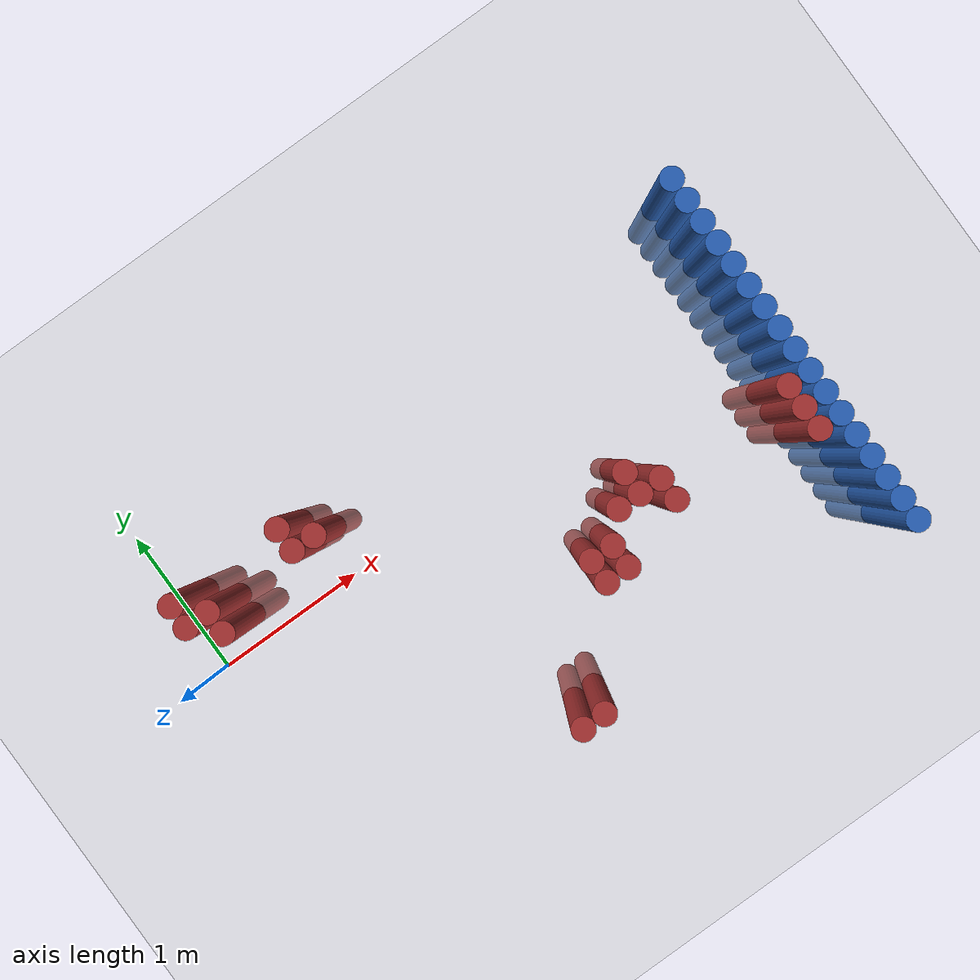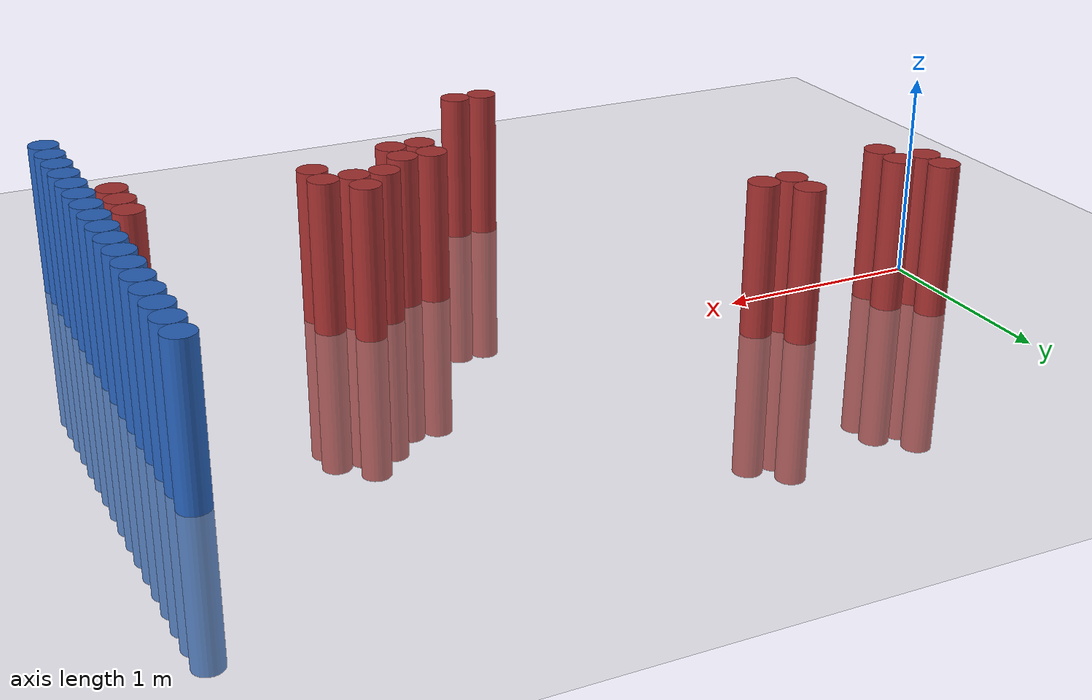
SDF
<sdf version="1.6">
 <world name="default">
  <model name="ground_plane">
   <static>1</static>
   <link name="link">
    <collision name="collision">
     <geometry><plane><normal>0 0 1</normal><size>100 100</size></plane></geometry>
     <surface><friction><ode><mu>100</mu><mu2>50</mu2></ode></friction></surface>
    </collision>
    <visual name="visual">
     <cast_shadows>0</cast_shadows>
     <geometry><plane><normal>0 0 1</normal><size>100 100</size></plane></geometry>
     <material>
      <script><uri>file://media/materials/scripts/gazebo.material</uri><name>Gazebo/Grey</name></script>
     </material>
    </visual>
   </link>
  </model>
  <model name="unit_cylinder_94">
   <static>1</static>
   <pose>3.925000 -1.475000 0.000000 0.000000 0.000000 0.000000</pose>
   <link name="link">
    <inertial>
     <mass>1</mass>
     <inertia><ixx>0.145833</ixx><ixy>0</ixy><ixz>0</ixz><iyy>0.145833</iyy><iyz>0</iyz><izz>0.125</izz></inertia>
    </inertial>
    <collision name="collision">
     <geometry><cylinder><radius>0.075000</radius><length>1.5</length></cylinder></geometry>
    </collision>
    <visual name="visual">
     <geometry><cylinder><radius>0.075000</radius><length>1.5</length></cylinder></geometry>
     <material>
      <ambient>0.152000 0.379000 0.720000 1</ambient>
      <diffuse>0.152000 0.379000 0.720000 1</diffuse>
     </material>
     <material>
      <script><name>Gazebo/Grey</name><uri>file://media/materials/scripts/gazebo.material</uri></script>
     </material>
    </visual>
   </link>
  </model>
  <model name="unit_cylinder_96">
   <static>1</static>
   <pose>3.925000 -1.325000 0.000000 0.000000 0.000000 0.000000</pose>
   <link name="link">
    <inertial>
     <mass>1</mass>
     <inertia><ixx>0.145833</ixx><ixy>0</ixy><ixz>0</ixz><iyy>0.145833</iyy><iyz>0</iyz><izz>0.125</izz></inertia>
    </inertial>
    <collision name="collision">
     <geometry><cylinder><radius>0.075000</radius><length>1.5</length></cylinder></geometry>
    </collision>
    <visual name="visual">
     <geometry><cylinder><radius>0.075000</radius><length>1.5</length></cylinder></geometry>
     <material>
      <ambient>0.152000 0.379000 0.720000 1</ambient>
      <diffuse>0.152000 0.379000 0.720000 1</diffuse>
     </material>
     <material>
      <script><name>Gazebo/Grey</name><uri>file://media/materials/scripts/gazebo.material</uri></script>
     </material>
    </visual>
   </link>
  </model>
  <model name="unit_cylinder_98">
   <static>1</static>
   <pose>3.925000 -1.175000 0.000000 0.000000 0.000000 0.000000</pose>
   <link name="link">
    <inertial>
     <mass>1</mass>
     <inertia><ixx>0.145833</ixx><ixy>0</ixy><ixz>0</ixz><iyy>0.145833</iyy><iyz>0</iyz><izz>0.125</izz></inertia>
    </inertial>
    <collision name="collision">
     <geometry><cylinder><radius>0.075000</radius><length>1.5</length></cylinder></geometry>
    </collision>
    <visual name="visual">
     <geometry><cylinder><radius>0.075000</radius><length>1.5</length></cylinder></geometry>
     <material>
      <ambient>0.152000 0.379000 0.720000 1</ambient>
      <diffuse>0.152000 0.379000 0.720000 1</diffuse>
     </material>
     <material>
      <script><name>Gazebo/Grey</name><uri>file://media/materials/scripts/gazebo.material</uri></script>
     </material>
    </visual>
   </link>
  </model>
  <model name="unit_cylinder_100">
   <static>1</static>
   <pose>3.925000 -1.025000 0.000000 0.000000 0.000000 0.000000</pose>
   <link name="link">
    <inertial>
     <mass>1</mass>
     <inertia><ixx>0.145833</ixx><ixy>0</ixy><ixz>0</ixz><iyy>0.145833</iyy><iyz>0</iyz><izz>0.125</izz></inertia>
    </inertial>
    <collision name="collision">
     <geometry><cylinder><radius>0.075000</radius><length>1.5</length></cylinder></geometry>
    </collision>
    <visual name="visual">
     <geometry><cylinder><radius>0.075000</radius><length>1.5</length></cylinder></geometry>
     <material>
      <ambient>0.152000 0.379000 0.720000 1</ambient>
      <diffuse>0.152000 0.379000 0.720000 1</diffuse>
     </material>
     <material>
      <script><name>Gazebo/Grey</name><uri>file://media/materials/scripts/gazebo.material</uri></script>
     </material>
    </visual>
   </link>
  </model>
  <model name="unit_cylinder_102">
   <static>1</static>
   <pose>3.925000 -0.875000 0.000000 0.000000 0.000000 0.000000</pose>
   <link name="link">
    <inertial>
     <mass>1</mass>
     <inertia><ixx>0.145833</ixx><ixy>0</ixy><ixz>0</ixz><iyy>0.145833</iyy><iyz>0</iyz><izz>0.125</izz></inertia>
    </inertial>
    <collision name="collision">
     <geometry><cylinder><radius>0.075000</radius><length>1.5</length></cylinder></geometry>
    </collision>
    <visual name="visual">
     <geometry><cylinder><radius>0.075000</radius><length>1.5</length></cylinder></geometry>
     <material>
      <ambient>0.152000 0.379000 0.720000 1</ambient>
      <diffuse>0.152000 0.379000 0.720000 1</diffuse>
     </material>
     <material>
      <script><name>Gazebo/Grey</name><uri>file://media/materials/scripts/gazebo.material</uri></script>
     </material>
    </visual>
   </link>
  </model>
  <model name="unit_cylinder_104">
   <static>1</static>
   <pose>3.925000 -0.725000 0.000000 0.000000 0.000000 0.000000</pose>
   <link name="link">
    <inertial>
     <mass>1</mass>
     <inertia><ixx>0.145833</ixx><ixy>0</ixy><ixz>0</ixz><iyy>0.145833</iyy><iyz>0</iyz><izz>0.125</izz></inertia>
    </inertial>
    <collision name="collision">
     <geometry><cylinder><radius>0.075000</radius><length>1.5</length></cylinder></geometry>
    </collision>
    <visual name="visual">
     <geometry><cylinder><radius>0.075000</radius><length>1.5</length></cylinder></geometry>
     <material>
      <ambient>0.152000 0.379000 0.720000 1</ambient>
      <diffuse>0.152000 0.379000 0.720000 1</diffuse>
     </material>
     <material>
      <script><name>Gazebo/Grey</name><uri>file://media/materials/scripts/gazebo.material</uri></script>
     </material>
    </visual>
   </link>
  </model>
  <model name="unit_cylinder_106">
   <static>1</static>
   <pose>3.925000 -0.575000 0.000000 0.000000 0.000000 0.000000</pose>
   <link name="link">
    <inertial>
     <mass>1</mass>
     <inertia><ixx>0.145833</ixx><ixy>0</ixy><ixz>0</ixz><iyy>0.145833</iyy><iyz>0</iyz><izz>0.125</izz></inertia>
    </inertial>
    <collision name="collision">
     <geometry><cylinder><radius>0.075000</radius><length>1.5</length></cylinder></geometry>
    </collision>
    <visual name="visual">
     <geometry><cylinder><radius>0.075000</radius><length>1.5</length></cylinder></geometry>
     <material>
      <ambient>0.152000 0.379000 0.720000 1</ambient>
      <diffuse>0.152000 0.379000 0.720000 1</diffuse>
     </material>
     <material>
      <script><name>Gazebo/Grey</name><uri>file://media/materials/scripts/gazebo.material</uri></script>
     </material>
    </visual>
   </link>
  </model>
  <model name="unit_cylinder_108">
   <static>1</static>
   <pose>3.925000 -0.425000 0.000000 0.000000 0.000000 0.000000</pose>
   <link name="link">
    <inertial>
     <mass>1</mass>
     <inertia><ixx>0.145833</ixx><ixy>0</ixy><ixz>0</ixz><iyy>0.145833</iyy><iyz>0</iyz><izz>0.125</izz></inertia>
    </inertial>
    <collision name="collision">
     <geometry><cylinder><radius>0.075000</radius><length>1.5</length></cylinder></geometry>
    </collision>
    <visual name="visual">
     <geometry><cylinder><radius>0.075000</radius><length>1.5</length></cylinder></geometry>
     <material>
      <ambient>0.152000 0.379000 0.720000 1</ambient>
      <diffuse>0.152000 0.379000 0.720000 1</diffuse>
     </material>
     <material>
      <script><name>Gazebo/Grey</name><uri>file://media/materials/scripts/gazebo.material</uri></script>
     </material>
    </visual>
   </link>
  </model>
  <model name="unit_cylinder_110">
   <static>1</static>
   <pose>3.925000 -0.275000 0.000000 0.000000 0.000000 0.000000</pose>
   <link name="link">
    <inertial>
     <mass>1</mass>
     <inertia><ixx>0.145833</ixx><ixy>0</ixy><ixz>0</ixz><iyy>0.145833</iyy><iyz>0</iyz><izz>0.125</izz></inertia>
    </inertial>
    <collision name="collision">
     <geometry><cylinder><radius>0.075000</radius><length>1.5</length></cylinder></geometry>
    </collision>
    <visual name="visual">
     <geometry><cylinder><radius>0.075000</radius><length>1.5</length></cylinder></geometry>
     <material>
      <ambient>0.152000 0.379000 0.720000 1</ambient>
      <diffuse>0.152000 0.379000 0.720000 1</diffuse>
     </material>
     <material>
      <script><name>Gazebo/Grey</name><uri>file://media/materials/scripts/gazebo.material</uri></script>
     </material>
    </visual>
   </link>
  </model>
  <model name="unit_cylinder_112">
   <static>1</static>
   <pose>3.925000 -0.125000 0.000000 0.000000 0.000000 0.000000</pose>
   <link name="link">
    <inertial>
     <mass>1</mass>
     <inertia><ixx>0.145833</ixx><ixy>0</ixy><ixz>0</ixz><iyy>0.145833</iyy><iyz>0</iyz><izz>0.125</izz></inertia>
    </inertial>
    <collision name="collision">
     <geometry><cylinder><radius>0.075000</radius><length>1.5</length></cylinder></geometry>
    </collision>
    <visual name="visual">
     <geometry><cylinder><radius>0.075000</radius><length>1.5</length></cylinder></geometry>
     <material>
      <ambient>0.152000 0.379000 0.720000 1</ambient>
      <diffuse>0.152000 0.379000 0.720000 1</diffuse>
     </material>
     <material>
      <script><name>Gazebo/Grey</name><uri>file://media/materials/scripts/gazebo.material</uri></script>
     </material>
    </visual>
   </link>
  </model>
  <model name="unit_cylinder_114">
   <static>1</static>
   <pose>3.925000 0.025000 0.000000 0.000000 0.000000 0.000000</pose>
   <link name="link">
    <inertial>
     <mass>1</mass>
     <inertia><ixx>0.145833</ixx><ixy>0</ixy><ixz>0</ixz><iyy>0.145833</iyy><iyz>0</iyz><izz>0.125</izz></inertia>
    </inertial>
    <collision name="collision">
     <geometry><cylinder><radius>0.075000</radius><length>1.5</length></cylinder></geometry>
    </collision>
    <visual name="visual">
     <geometry><cylinder><radius>0.075000</radius><length>1.5</length></cylinder></geometry>
     <material>
      <ambient>0.152000 0.379000 0.720000 1</ambient>
      <diffuse>0.152000 0.379000 0.720000 1</diffuse>
     </material>
     <material>
      <script><name>Gazebo/Grey</name><uri>file://media/materials/scripts/gazebo.material</uri></script>
     </material>
    </visual>
   </link>
  </model>
  <model name="unit_cylinder_116">
   <static>1</static>
   <pose>3.925000 0.175000 0.000000 0.000000 0.000000 0.000000</pose>
   <link name="link">
    <inertial>
     <mass>1</mass>
     <inertia><ixx>0.145833</ixx><ixy>0</ixy><ixz>0</ixz><iyy>0.145833</iyy><iyz>0</iyz><izz>0.125</izz></inertia>
    </inertial>
    <collision name="collision">
     <geometry><cylinder><radius>0.075000</radius><length>1.5</length></cylinder></geometry>
    </collision>
    <visual name="visual">
     <geometry><cylinder><radius>0.075000</radius><length>1.5</length></cylinder></geometry>
     <material>
      <ambient>0.152000 0.379000 0.720000 1</ambient>
      <diffuse>0.152000 0.379000 0.720000 1</diffuse>
     </material>
     <material>
      <script><name>Gazebo/Grey</name><uri>file://media/materials/scripts/gazebo.material</uri></script>
     </material>
    </visual>
   </link>
  </model>
  <model name="unit_cylinder_118">
   <static>1</static>
   <pose>3.925000 0.325000 0.000000 0.000000 0.000000 0.000000</pose>
   <link name="link">
    <inertial>
     <mass>1</mass>
     <inertia><ixx>0.145833</ixx><ixy>0</ixy><ixz>0</ixz><iyy>0.145833</iyy><iyz>0</iyz><izz>0.125</izz></inertia>
    </inertial>
    <collision name="collision">
     <geometry><cylinder><radius>0.075000</radius><length>1.5</length></cylinder></geometry>
    </collision>
    <visual name="visual">
     <geometry><cylinder><radius>0.075000</radius><length>1.5</length></cylinder></geometry>
     <material>
      <ambient>0.152000 0.379000 0.720000 1</ambient>
      <diffuse>0.152000 0.379000 0.720000 1</diffuse>
     </material>
     <material>
      <script><name>Gazebo/Grey</name><uri>file://media/materials/scripts/gazebo.material</uri></script>
     </material>
    </visual>
   </link>
  </model>
  <model name="unit_cylinder_120">
   <static>1</static>
   <pose>3.925000 0.475000 0.000000 0.000000 0.000000 0.000000</pose>
   <link name="link">
    <inertial>
     <mass>1</mass>
     <inertia><ixx>0.145833</ixx><ixy>0</ixy><ixz>0</ixz><iyy>0.145833</iyy><iyz>0</iyz><izz>0.125</izz></inertia>
    </inertial>
    <collision name="collision">
     <geometry><cylinder><radius>0.075000</radius><length>1.5</length></cylinder></geometry>
    </collision>
    <visual name="visual">
     <geometry><cylinder><radius>0.075000</radius><length>1.5</length></cylinder></geometry>
     <material>
      <ambient>0.152000 0.379000 0.720000 1</ambient>
      <diffuse>0.152000 0.379000 0.720000 1</diffuse>
     </material>
     <material>
      <script><name>Gazebo/Grey</name><uri>file://media/materials/scripts/gazebo.material</uri></script>
     </material>
    </visual>
   </link>
  </model>
  <model name="unit_cylinder_122">
   <static>1</static>
   <pose>3.925000 0.625000 0.000000 0.000000 0.000000 0.000000</pose>
   <link name="link">
    <inertial>
     <mass>1</mass>
     <inertia><ixx>0.145833</ixx><ixy>0</ixy><ixz>0</ixz><iyy>0.145833</iyy><iyz>0</iyz><izz>0.125</izz></inertia>
    </inertial>
    <collision name="collision">
     <geometry><cylinder><radius>0.075000</radius><length>1.5</length></cylinder></geometry>
    </collision>
    <visual name="visual">
     <geometry><cylinder><radius>0.075000</radius><length>1.5</length></cylinder></geometry>
     <material>
      <ambient>0.152000 0.379000 0.720000 1</ambient>
      <diffuse>0.152000 0.379000 0.720000 1</diffuse>
     </material>
     <material>
      <script><name>Gazebo/Grey</name><uri>file://media/materials/scripts/gazebo.material</uri></script>
     </material>
    </visual>
   </link>
  </model>
  <model name="unit_cylinder_124">
   <static>1</static>
   <pose>3.925000 0.775000 0.000000 0.000000 0.000000 0.000000</pose>
   <link name="link">
    <inertial>
     <mass>1</mass>
     <inertia><ixx>0.145833</ixx><ixy>0</ixy><ixz>0</ixz><iyy>0.145833</iyy><iyz>0</iyz><izz>0.125</izz></inertia>
    </inertial>
    <collision name="collision">
     <geometry><cylinder><radius>0.075000</radius><length>1.5</length></cylinder></geometry>
    </collision>
    <visual name="visual">
     <geometry><cylinder><radius>0.075000</radius><length>1.5</length></cylinder></geometry>
     <material>
      <ambient>0.152000 0.379000 0.720000 1</ambient>
      <diffuse>0.152000 0.379000 0.720000 1</diffuse>
     </material>
     <material>
      <script><name>Gazebo/Grey</name><uri>file://media/materials/scripts/gazebo.material</uri></script>
     </material>
    </visual>
   </link>
  </model>
  <model name="unit_cylinder_331">
   <static>1</static>
   <pose>0.175000 0.325000 0.000000 0.000000 0.000000 0.000000</pose>
   <link name="link">
    <inertial>
     <mass>1</mass>
     <inertia><ixx>0.145833</ixx><ixy>0</ixy><ixz>0</ixz><iyy>0.145833</iyy><iyz>0</iyz><izz>0.125</izz></inertia>
    </inertial>
    <collision name="collision">
     <geometry><cylinder><radius>0.075000</radius><length>1.5</length></cylinder></geometry>
    </collision>
    <visual name="visual">
     <geometry><cylinder><radius>0.075000</radius><length>1.5</length></cylinder></geometry>
     <material>
      <ambient>0.648000 0.192000 0.192000 1</ambient>
      <diffuse>0.648000 0.192000 0.192000 1</diffuse>
     </material>
     <material>
      <script><name>Gazebo/Grey</name><uri>file://media/materials/scripts/gazebo.material</uri></script>
     </material>
    </visual>
   </link>
  </model>
  <model name="unit_cylinder_332">
   <static>1</static>
   <pose>0.175000 0.475000 0.000000 0.000000 0.000000 0.000000</pose>
   <link name="link">
    <inertial>
     <mass>1</mass>
     <inertia><ixx>0.145833</ixx><ixy>0</ixy><ixz>0</ixz><iyy>0.145833</iyy><iyz>0</iyz><izz>0.125</izz></inertia>
    </inertial>
    <collision name="collision">
     <geometry><cylinder><radius>0.075000</radius><length>1.5</length></cylinder></geometry>
    </collision>
    <visual name="visual">
     <geometry><cylinder><radius>0.075000</radius><length>1.5</length></cylinder></geometry>
     <material>
      <ambient>0.648000 0.192000 0.192000 1</ambient>
      <diffuse>0.648000 0.192000 0.192000 1</diffuse>
     </material>
     <material>
      <script><name>Gazebo/Grey</name><uri>file://media/materials/scripts/gazebo.material</uri></script>
     </material>
    </visual>
   </link>
  </model>
  <model name="unit_cylinder_334">
   <static>1</static>
   <pose>0.325000 0.175000 0.000000 0.000000 0.000000 0.000000</pose>
   <link name="link">
    <inertial>
     <mass>1</mass>
     <inertia><ixx>0.145833</ixx><ixy>0</ixy><ixz>0</ixz><iyy>0.145833</iyy><iyz>0</iyz><izz>0.125</izz></inertia>
    </inertial>
    <collision name="collision">
     <geometry><cylinder><radius>0.075000</radius><length>1.5</length></cylinder></geometry>
    </collision>
    <visual name="visual">
     <geometry><cylinder><radius>0.075000</radius><length>1.5</length></cylinder></geometry>
     <material>
      <ambient>0.648000 0.192000 0.192000 1</ambient>
      <diffuse>0.648000 0.192000 0.192000 1</diffuse>
     </material>
     <material>
      <script><name>Gazebo/Grey</name><uri>file://media/materials/scripts/gazebo.material</uri></script>
     </material>
    </visual>
   </link>
  </model>
  <model name="unit_cylinder_335">
   <static>1</static>
   <pose>0.325000 0.325000 0.000000 0.000000 0.000000 0.000000</pose>
   <link name="link">
    <inertial>
     <mass>1</mass>
     <inertia><ixx>0.145833</ixx><ixy>0</ixy><ixz>0</ixz><iyy>0.145833</iyy><iyz>0</iyz><izz>0.125</izz></inertia>
    </inertial>
    <collision name="collision">
     <geometry><cylinder><radius>0.075000</radius><length>1.5</length></cylinder></geometry>
    </collision>
    <visual name="visual">
     <geometry><cylinder><radius>0.075000</radius><length>1.5</length></cylinder></geometry>
     <material>
      <ambient>0.648000 0.192000 0.192000 1</ambient>
      <diffuse>0.648000 0.192000 0.192000 1</diffuse>
     </material>
     <material>
      <script><name>Gazebo/Grey</name><uri>file://media/materials/scripts/gazebo.material</uri></script>
     </material>
    </visual>
   </link>
  </model>
  <model name="unit_cylinder_336">
   <static>1</static>
   <pose>0.925000 0.325000 0.000000 0.000000 0.000000 0.000000</pose>
   <link name="link">
    <inertial>
     <mass>1</mass>
     <inertia><ixx>0.145833</ixx><ixy>0</ixy><ixz>0</ixz><iyy>0.145833</iyy><iyz>0</iyz><izz>0.125</izz></inertia>
    </inertial>
    <collision name="collision">
     <geometry><cylinder><radius>0.075000</radius><length>1.5</length></cylinder></geometry>
    </collision>
    <visual name="visual">
     <geometry><cylinder><radius>0.075000</radius><length>1.5</length></cylinder></geometry>
     <material>
      <ambient>0.648000 0.192000 0.192000 1</ambient>
      <diffuse>0.648000 0.192000 0.192000 1</diffuse>
     </material>
     <material>
      <script><name>Gazebo/Grey</name><uri>file://media/materials/scripts/gazebo.material</uri></script>
     </material>
    </visual>
   </link>
  </model>
  <model name="unit_cylinder_337">
   <static>1</static>
   <pose>0.925000 0.475000 0.000000 0.000000 0.000000 0.000000</pose>
   <link name="link">
    <inertial>
     <mass>1</mass>
     <inertia><ixx>0.145833</ixx><ixy>0</ixy><ixz>0</ixz><iyy>0.145833</iyy><iyz>0</iyz><izz>0.125</izz></inertia>
    </inertial>
    <collision name="collision">
     <geometry><cylinder><radius>0.075000</radius><length>1.5</length></cylinder></geometry>
    </collision>
    <visual name="visual">
     <geometry><cylinder><radius>0.075000</radius><length>1.5</length></cylinder></geometry>
     <material>
      <ambient>0.648000 0.192000 0.192000 1</ambient>
      <diffuse>0.648000 0.192000 0.192000 1</diffuse>
     </material>
     <material>
      <script><name>Gazebo/Grey</name><uri>file://media/materials/scripts/gazebo.material</uri></script>
     </material>
    </visual>
   </link>
  </model>
  <model name="unit_cylinder_338">
   <static>1</static>
   <pose>1.075000 0.325000 0.000000 0.000000 0.000000 0.000000</pose>
   <link name="link">
    <inertial>
     <mass>1</mass>
     <inertia><ixx>0.145833</ixx><ixy>0</ixy><ixz>0</ixz><iyy>0.145833</iyy><iyz>0</iyz><izz>0.125</izz></inertia>
    </inertial>
    <collision name="collision">
     <geometry><cylinder><radius>0.075000</radius><length>1.5</length></cylinder></geometry>
    </collision>
    <visual name="visual">
     <geometry><cylinder><radius>0.075000</radius><length>1.5</length></cylinder></geometry>
     <material>
      <ambient>0.648000 0.192000 0.192000 1</ambient>
      <diffuse>0.648000 0.192000 0.192000 1</diffuse>
     </material>
     <material>
      <script><name>Gazebo/Grey</name><uri>file://media/materials/scripts/gazebo.material</uri></script>
     </material>
    </visual>
   </link>
  </model>
  <model name="unit_cylinder_339">
   <static>1</static>
   <pose>1.675000 -1.475000 0.000000 0.000000 0.000000 0.000000</pose>
   <link name="link">
    <inertial>
     <mass>1</mass>
     <inertia><ixx>0.145833</ixx><ixy>0</ixy><ixz>0</ixz><iyy>0.145833</iyy><iyz>0</iyz><izz>0.125</izz></inertia>
    </inertial>
    <collision name="collision">
     <geometry><cylinder><radius>0.075000</radius><length>1.5</length></cylinder></geometry>
    </collision>
    <visual name="visual">
     <geometry><cylinder><radius>0.075000</radius><length>1.5</length></cylinder></geometry>
     <material>
      <ambient>0.648000 0.192000 0.192000 1</ambient>
      <diffuse>0.648000 0.192000 0.192000 1</diffuse>
     </material>
     <material>
      <script><name>Gazebo/Grey</name><uri>file://media/materials/scripts/gazebo.material</uri></script>
     </material>
    </visual>
   </link>
  </model>
  <model name="unit_cylinder_341">
   <static>1</static>
   <pose>1.825000 -1.475000 0.000000 0.000000 0.000000 0.000000</pose>
   <link name="link">
    <inertial>
     <mass>1</mass>
     <inertia><ixx>0.145833</ixx><ixy>0</ixy><ixz>0</ixz><iyy>0.145833</iyy><iyz>0</iyz><izz>0.125</izz></inertia>
    </inertial>
    <collision name="collision">
     <geometry><cylinder><radius>0.075000</radius><length>1.5</length></cylinder></geometry>
    </collision>
    <visual name="visual">
     <geometry><cylinder><radius>0.075000</radius><length>1.5</length></cylinder></geometry>
     <material>
      <ambient>0.648000 0.192000 0.192000 1</ambient>
      <diffuse>0.648000 0.192000 0.192000 1</diffuse>
     </material>
     <material>
      <script><name>Gazebo/Grey</name><uri>file://media/materials/scripts/gazebo.material</uri></script>
     </material>
    </visual>
   </link>
  </model>
  <model name="unit_cylinder_343">
   <static>1</static>
   <pose>2.275000 -0.875000 0.000000 0.000000 0.000000 0.000000</pose>
   <link name="link">
    <inertial>
     <mass>1</mass>
     <inertia><ixx>0.145833</ixx><ixy>0</ixy><ixz>0</ixz><iyy>0.145833</iyy><iyz>0</iyz><izz>0.125</izz></inertia>
    </inertial>
    <collision name="collision">
     <geometry><cylinder><radius>0.075000</radius><length>1.5</length></cylinder></geometry>
    </collision>
    <visual name="visual">
     <geometry><cylinder><radius>0.075000</radius><length>1.5</length></cylinder></geometry>
     <material>
      <ambient>0.648000 0.192000 0.192000 1</ambient>
      <diffuse>0.648000 0.192000 0.192000 1</diffuse>
     </material>
     <material>
      <script><name>Gazebo/Grey</name><uri>file://media/materials/scripts/gazebo.material</uri></script>
     </material>
    </visual>
   </link>
  </model>
  <model name="unit_cylinder_344">
   <static>1</static>
   <pose>2.275000 -0.725000 0.000000 0.000000 0.000000 0.000000</pose>
   <link name="link">
    <inertial>
     <mass>1</mass>
     <inertia><ixx>0.145833</ixx><ixy>0</ixy><ixz>0</ixz><iyy>0.145833</iyy><iyz>0</iyz><izz>0.125</izz></inertia>
    </inertial>
    <collision name="collision">
     <geometry><cylinder><radius>0.075000</radius><length>1.5</length></cylinder></geometry>
    </collision>
    <visual name="visual">
     <geometry><cylinder><radius>0.075000</radius><length>1.5</length></cylinder></geometry>
     <material>
      <ambient>0.648000 0.192000 0.192000 1</ambient>
      <diffuse>0.648000 0.192000 0.192000 1</diffuse>
     </material>
     <material>
      <script><name>Gazebo/Grey</name><uri>file://media/materials/scripts/gazebo.material</uri></script>
     </material>
    </visual>
   </link>
  </model>
  <model name="unit_cylinder_346">
   <static>1</static>
   <pose>2.425000 -0.875000 0.000000 0.000000 0.000000 0.000000</pose>
   <link name="link">
    <inertial>
     <mass>1</mass>
     <inertia><ixx>0.145833</ixx><ixy>0</ixy><ixz>0</ixz><iyy>0.145833</iyy><iyz>0</iyz><izz>0.125</izz></inertia>
    </inertial>
    <collision name="collision">
     <geometry><cylinder><radius>0.075000</radius><length>1.5</length></cylinder></geometry>
    </collision>
    <visual name="visual">
     <geometry><cylinder><radius>0.075000</radius><length>1.5</length></cylinder></geometry>
     <material>
      <ambient>0.648000 0.192000 0.192000 1</ambient>
      <diffuse>0.648000 0.192000 0.192000 1</diffuse>
     </material>
     <material>
      <script><name>Gazebo/Grey</name><uri>file://media/materials/scripts/gazebo.material</uri></script>
     </material>
    </visual>
   </link>
  </model>
  <model name="unit_cylinder_347">
   <static>1</static>
   <pose>2.425000 -0.725000 0.000000 0.000000 0.000000 0.000000</pose>
   <link name="link">
    <inertial>
     <mass>1</mass>
     <inertia><ixx>0.145833</ixx><ixy>0</ixy><ixz>0</ixz><iyy>0.145833</iyy><iyz>0</iyz><izz>0.125</izz></inertia>
    </inertial>
    <collision name="collision">
     <geometry><cylinder><radius>0.075000</radius><length>1.5</length></cylinder></geometry>
    </collision>
    <visual name="visual">
     <geometry><cylinder><radius>0.075000</radius><length>1.5</length></cylinder></geometry>
     <material>
      <ambient>0.648000 0.192000 0.192000 1</ambient>
      <diffuse>0.648000 0.192000 0.192000 1</diffuse>
     </material>
     <material>
      <script><name>Gazebo/Grey</name><uri>file://media/materials/scripts/gazebo.material</uri></script>
     </material>
    </visual>
   </link>
  </model>
  <model name="unit_cylinder_350">
   <static>1</static>
   <pose>2.575000 -0.575000 0.000000 0.000000 0.000000 0.000000</pose>
   <link name="link">
    <inertial>
     <mass>1</mass>
     <inertia><ixx>0.145833</ixx><ixy>0</ixy><ixz>0</ixz><iyy>0.145833</iyy><iyz>0</iyz><izz>0.125</izz></inertia>
    </inertial>
    <collision name="collision">
     <geometry><cylinder><radius>0.075000</radius><length>1.5</length></cylinder></geometry>
    </collision>
    <visual name="visual">
     <geometry><cylinder><radius>0.075000</radius><length>1.5</length></cylinder></geometry>
     <material>
      <ambient>0.648000 0.192000 0.192000 1</ambient>
      <diffuse>0.648000 0.192000 0.192000 1</diffuse>
     </material>
     <material>
      <script><name>Gazebo/Grey</name><uri>file://media/materials/scripts/gazebo.material</uri></script>
     </material>
    </visual>
   </link>
  </model>
  <model name="unit_cylinder_353">
   <static>1</static>
   <pose>2.725000 -0.575000 0.000000 0.000000 0.000000 0.000000</pose>
   <link name="link">
    <inertial>
     <mass>1</mass>
     <inertia><ixx>0.145833</ixx><ixy>0</ixy><ixz>0</ixz><iyy>0.145833</iyy><iyz>0</iyz><izz>0.125</izz></inertia>
    </inertial>
    <collision name="collision">
     <geometry><cylinder><radius>0.075000</radius><length>1.5</length></cylinder></geometry>
    </collision>
    <visual name="visual">
     <geometry><cylinder><radius>0.075000</radius><length>1.5</length></cylinder></geometry>
     <material>
      <ambient>0.648000 0.192000 0.192000 1</ambient>
      <diffuse>0.648000 0.192000 0.192000 1</diffuse>
     </material>
     <material>
      <script><name>Gazebo/Grey</name><uri>file://media/materials/scripts/gazebo.material</uri></script>
     </material>
    </visual>
   </link>
  </model>
  <model name="unit_cylinder_354">
   <static>1</static>
   <pose>2.725000 -0.425000 0.000000 0.000000 0.000000 0.000000</pose>
   <link name="link">
    <inertial>
     <mass>1</mass>
     <inertia><ixx>0.145833</ixx><ixy>0</ixy><ixz>0</ixz><iyy>0.145833</iyy><iyz>0</iyz><izz>0.125</izz></inertia>
    </inertial>
    <collision name="collision">
     <geometry><cylinder><radius>0.075000</radius><length>1.5</length></cylinder></geometry>
    </collision>
    <visual name="visual">
     <geometry><cylinder><radius>0.075000</radius><length>1.5</length></cylinder></geometry>
     <material>
      <ambient>0.648000 0.192000 0.192000 1</ambient>
      <diffuse>0.648000 0.192000 0.192000 1</diffuse>
     </material>
     <material>
      <script><name>Gazebo/Grey</name><uri>file://media/materials/scripts/gazebo.material</uri></script>
     </material>
    </visual>
   </link>
  </model>
  <model name="unit_cylinder_355">
   <static>1</static>
   <pose>2.875000 -0.725000 0.000000 0.000000 0.000000 0.000000</pose>
   <link name="link">
    <inertial>
     <mass>1</mass>
     <inertia><ixx>0.145833</ixx><ixy>0</ixy><ixz>0</ixz><iyy>0.145833</iyy><iyz>0</iyz><izz>0.125</izz></inertia>
    </inertial>
    <collision name="collision">
     <geometry><cylinder><radius>0.075000</radius><length>1.5</length></cylinder></geometry>
    </collision>
    <visual name="visual">
     <geometry><cylinder><radius>0.075000</radius><length>1.5</length></cylinder></geometry>
     <material>
      <ambient>0.648000 0.192000 0.192000 1</ambient>
      <diffuse>0.648000 0.192000 0.192000 1</diffuse>
     </material>
     <material>
      <script><name>Gazebo/Grey</name><uri>file://media/materials/scripts/gazebo.material</uri></script>
     </material>
    </visual>
   </link>
  </model>
  <model name="unit_cylinder_356">
   <static>1</static>
   <pose>2.875000 -0.575000 0.000000 0.000000 0.000000 0.000000</pose>
   <link name="link">
    <inertial>
     <mass>1</mass>
     <inertia><ixx>0.145833</ixx><ixy>0</ixy><ixz>0</ixz><iyy>0.145833</iyy><iyz>0</iyz><izz>0.125</izz></inertia>
    </inertial>
    <collision name="collision">
     <geometry><cylinder><radius>0.075000</radius><length>1.5</length></cylinder></geometry>
    </collision>
    <visual name="visual">
     <geometry><cylinder><radius>0.075000</radius><length>1.5</length></cylinder></geometry>
     <material>
      <ambient>0.648000 0.192000 0.192000 1</ambient>
      <diffuse>0.648000 0.192000 0.192000 1</diffuse>
     </material>
     <material>
      <script><name>Gazebo/Grey</name><uri>file://media/materials/scripts/gazebo.material</uri></script>
     </material>
    </visual>
   </link>
  </model>
  <model name="unit_cylinder_364">
   <static>1</static>
   <pose>3.775000 -0.875000 0.000000 0.000000 0.000000 0.000000</pose>
   <link name="link">
    <inertial>
     <mass>1</mass>
     <inertia><ixx>0.145833</ixx><ixy>0</ixy><ixz>0</ixz><iyy>0.145833</iyy><iyz>0</iyz><izz>0.125</izz></inertia>
    </inertial>
    <collision name="collision">
     <geometry><cylinder><radius>0.075000</radius><length>1.5</length></cylinder></geometry>
    </collision>
    <visual name="visual">
     <geometry><cylinder><radius>0.075000</radius><length>1.5</length></cylinder></geometry>
     <material>
      <ambient>0.648000 0.192000 0.192000 1</ambient>
      <diffuse>0.648000 0.192000 0.192000 1</diffuse>
     </material>
     <material>
      <script><name>Gazebo/Grey</name><uri>file://media/materials/scripts/gazebo.material</uri></script>
     </material>
    </visual>
   </link>
  </model>
  <model name="unit_cylinder_365">
   <static>1</static>
   <pose>3.775000 -0.725000 0.000000 0.000000 0.000000 0.000000</pose>
   <link name="link">
    <inertial>
     <mass>1</mass>
     <inertia><ixx>0.145833</ixx><ixy>0</ixy><ixz>0</ixz><iyy>0.145833</iyy><iyz>0</iyz><izz>0.125</izz></inertia>
    </inertial>
    <collision name="collision">
     <geometry><cylinder><radius>0.075000</radius><length>1.5</length></cylinder></geometry>
    </collision>
    <visual name="visual">
     <geometry><cylinder><radius>0.075000</radius><length>1.5</length></cylinder></geometry>
     <material>
      <ambient>0.648000 0.192000 0.192000 1</ambient>
      <diffuse>0.648000 0.192000 0.192000 1</diffuse>
     </material>
     <material>
      <script><name>Gazebo/Grey</name><uri>file://media/materials/scripts/gazebo.material</uri></script>
     </material>
    </visual>
   </link>
  </model>
  <model name="unit_cylinder_366">
   <static>1</static>
   <pose>3.775000 -0.575000 0.000000 0.000000 0.000000 0.000000</pose>
   <link name="link">
    <inertial>
     <mass>1</mass>
     <inertia><ixx>0.145833</ixx><ixy>0</ixy><ixz>0</ixz><iyy>0.145833</iyy><iyz>0</iyz><izz>0.125</izz></inertia>
    </inertial>
    <collision name="collision">
     <geometry><cylinder><radius>0.075000</radius><length>1.5</length></cylinder></geometry>
    </collision>
    <visual name="visual">
     <geometry><cylinder><radius>0.075000</radius><length>1.5</length></cylinder></geometry>
     <material>
      <ambient>0.648000 0.192000 0.192000 1</ambient>
      <diffuse>0.648000 0.192000 0.192000 1</diffuse>
     </material>
     <material>
      <script><name>Gazebo/Grey</name><uri>file://media/materials/scripts/gazebo.material</uri></script>
     </material>
    </visual>
   </link>
  </model>
  <model name="unit_cylinder_376">
   <static>1</static>
   <pose>3.925000 -1.625000 0.000000 0.000000 0.000000 0.000000</pose>
   <link name="link">
    <inertial>
     <mass>1</mass>
     <inertia><ixx>0.145833</ixx><ixy>0</ixy><ixz>0</ixz><iyy>0.145833</iyy><iyz>0</iyz><izz>0.125</izz></inertia>
    </inertial>
    <collision name="collision">
     <geometry><cylinder><radius>0.075000</radius><length>1.5</length></cylinder></geometry>
    </collision>
    <visual name="visual">
     <geometry><cylinder><radius>0.075000</radius><length>1.5</length></cylinder></geometry>
     <material>
      <ambient>0.152000 0.379000 0.720000 1</ambient>
      <diffuse>0.152000 0.379000 0.720000 1</diffuse>
     </material>
     <material>
      <script><name>Gazebo/Grey</name><uri>file://media/materials/scripts/gazebo.material</uri></script>
     </material>
    </visual>
   </link>
  </model>
  <model name="unit_cylinder_377">
   <static>1</static>
   <pose>3.925000 -1.475000 0.000000 0.000000 0.000000 0.000000</pose>
   <link name="link">
    <inertial>
     <mass>1</mass>
     <inertia><ixx>0.145833</ixx><ixy>0</ixy><ixz>0</ixz><iyy>0.145833</iyy><iyz>0</iyz><izz>0.125</izz></inertia>
    </inertial>
    <collision name="collision">
     <geometry><cylinder><radius>0.075000</radius><length>1.5</length></cylinder></geometry>
    </collision>
    <visual name="visual">
     <geometry><cylinder><radius>0.075000</radius><length>1.5</length></cylinder></geometry>
     <material>
      <ambient>0.152000 0.379000 0.720000 1</ambient>
      <diffuse>0.152000 0.379000 0.720000 1</diffuse>
     </material>
     <material>
      <script><name>Gazebo/Grey</name><uri>file://media/materials/scripts/gazebo.material</uri></script>
     </material>
    </visual>
   </link>
  </model>
  <model name="unit_cylinder_378">
   <static>1</static>
   <pose>3.925000 -1.325000 0.000000 0.000000 0.000000 0.000000</pose>
   <link name="link">
    <inertial>
     <mass>1</mass>
     <inertia><ixx>0.145833</ixx><ixy>0</ixy><ixz>0</ixz><iyy>0.145833</iyy><iyz>0</iyz><izz>0.125</izz></inertia>
    </inertial>
    <collision name="collision">
     <geometry><cylinder><radius>0.075000</radius><length>1.5</length></cylinder></geometry>
    </collision>
    <visual name="visual">
     <geometry><cylinder><radius>0.075000</radius><length>1.5</length></cylinder></geometry>
     <material>
      <ambient>0.152000 0.379000 0.720000 1</ambient>
      <diffuse>0.152000 0.379000 0.720000 1</diffuse>
     </material>
     <material>
      <script><name>Gazebo/Grey</name><uri>file://media/materials/scripts/gazebo.material</uri></script>
     </material>
    </visual>
   </link>
  </model>
  <model name="unit_cylinder_379">
   <static>1</static>
   <pose>3.925000 -1.175000 0.000000 0.000000 0.000000 0.000000</pose>
   <link name="link">
    <inertial>
     <mass>1</mass>
     <inertia><ixx>0.145833</ixx><ixy>0</ixy><ixz>0</ixz><iyy>0.145833</iyy><iyz>0</iyz><izz>0.125</izz></inertia>
    </inertial>
    <collision name="collision">
     <geometry><cylinder><radius>0.075000</radius><length>1.5</length></cylinder></geometry>
    </collision>
    <visual name="visual">
     <geometry><cylinder><radius>0.075000</radius><length>1.5</length></cylinder></geometry>
     <material>
      <ambient>0.152000 0.379000 0.720000 1</ambient>
      <diffuse>0.152000 0.379000 0.720000 1</diffuse>
     </material>
     <material>
      <script><name>Gazebo/Grey</name><uri>file://media/materials/scripts/gazebo.material</uri></script>
     </material>
    </visual>
   </link>
  </model>
  <model name="unit_cylinder_380">
   <static>1</static>
   <pose>3.925000 -1.025000 0.000000 0.000000 0.000000 0.000000</pose>
   <link name="link">
    <inertial>
     <mass>1</mass>
     <inertia><ixx>0.145833</ixx><ixy>0</ixy><ixz>0</ixz><iyy>0.145833</iyy><iyz>0</iyz><izz>0.125</izz></inertia>
    </inertial>
    <collision name="collision">
     <geometry><cylinder><radius>0.075000</radius><length>1.5</length></cylinder></geometry>
    </collision>
    <visual name="visual">
     <geometry><cylinder><radius>0.075000</radius><length>1.5</length></cylinder></geometry>
     <material>
      <ambient>0.152000 0.379000 0.720000 1</ambient>
      <diffuse>0.152000 0.379000 0.720000 1</diffuse>
     </material>
     <material>
      <script><name>Gazebo/Grey</name><uri>file://media/materials/scripts/gazebo.material</uri></script>
     </material>
    </visual>
   </link>
  </model>
  <model name="unit_cylinder_381">
   <static>1</static>
   <pose>3.925000 -0.875000 0.000000 0.000000 0.000000 0.000000</pose>
   <link name="link">
    <inertial>
     <mass>1</mass>
     <inertia><ixx>0.145833</ixx><ixy>0</ixy><ixz>0</ixz><iyy>0.145833</iyy><iyz>0</iyz><izz>0.125</izz></inertia>
    </inertial>
    <collision name="collision">
     <geometry><cylinder><radius>0.075000</radius><length>1.5</length></cylinder></geometry>
    </collision>
    <visual name="visual">
     <geometry><cylinder><radius>0.075000</radius><length>1.5</length></cylinder></geometry>
     <material>
      <ambient>0.152000 0.379000 0.720000 1</ambient>
      <diffuse>0.152000 0.379000 0.720000 1</diffuse>
     </material>
     <material>
      <script><name>Gazebo/Grey</name><uri>file://media/materials/scripts/gazebo.material</uri></script>
     </material>
    </visual>
   </link>
  </model>
  <model name="unit_cylinder_382">
   <static>1</static>
   <pose>3.925000 -0.725000 0.000000 0.000000 0.000000 0.000000</pose>
   <link name="link">
    <inertial>
     <mass>1</mass>
     <inertia><ixx>0.145833</ixx><ixy>0</ixy><ixz>0</ixz><iyy>0.145833</iyy><iyz>0</iyz><izz>0.125</izz></inertia>
    </inertial>
    <collision name="collision">
     <geometry><cylinder><radius>0.075000</radius><length>1.5</length></cylinder></geometry>
    </collision>
    <visual name="visual">
     <geometry><cylinder><radius>0.075000</radius><length>1.5</length></cylinder></geometry>
     <material>
      <ambient>0.152000 0.379000 0.720000 1</ambient>
      <diffuse>0.152000 0.379000 0.720000 1</diffuse>
     </material>
     <material>
      <script><name>Gazebo/Grey</name><uri>file://media/materials/scripts/gazebo.material</uri></script>
     </material>
    </visual>
   </link>
  </model>
  <model name="unit_cylinder_383">
   <static>1</static>
   <pose>3.925000 -0.575000 0.000000 0.000000 0.000000 0.000000</pose>
   <link name="link">
    <inertial>
     <mass>1</mass>
     <inertia><ixx>0.145833</ixx><ixy>0</ixy><ixz>0</ixz><iyy>0.145833</iyy><iyz>0</iyz><izz>0.125</izz></inertia>
    </inertial>
    <collision name="collision">
     <geometry><cylinder><radius>0.075000</radius><length>1.5</length></cylinder></geometry>
    </collision>
    <visual name="visual">
     <geometry><cylinder><radius>0.075000</radius><length>1.5</length></cylinder></geometry>
     <material>
      <ambient>0.152000 0.379000 0.720000 1</ambient>
      <diffuse>0.152000 0.379000 0.720000 1</diffuse>
     </material>
     <material>
      <script><name>Gazebo/Grey</name><uri>file://media/materials/scripts/gazebo.material</uri></script>
     </material>
    </visual>
   </link>
  </model>
  <model name="unit_cylinder_384">
   <static>1</static>
   <pose>3.925000 -0.425000 0.000000 0.000000 0.000000 0.000000</pose>
   <link name="link">
    <inertial>
     <mass>1</mass>
     <inertia><ixx>0.145833</ixx><ixy>0</ixy><ixz>0</ixz><iyy>0.145833</iyy><iyz>0</iyz><izz>0.125</izz></inertia>
    </inertial>
    <collision name="collision">
     <geometry><cylinder><radius>0.075000</radius><length>1.5</length></cylinder></geometry>
    </collision>
    <visual name="visual">
     <geometry><cylinder><radius>0.075000</radius><length>1.5</length></cylinder></geometry>
     <material>
      <ambient>0.152000 0.379000 0.720000 1</ambient>
      <diffuse>0.152000 0.379000 0.720000 1</diffuse>
     </material>
     <material>
      <script><name>Gazebo/Grey</name><uri>file://media/materials/scripts/gazebo.material</uri></script>
     </material>
    </visual>
   </link>
  </model>
  <model name="unit_cylinder_385">
   <static>1</static>
   <pose>3.925000 -0.275000 0.000000 0.000000 0.000000 0.000000</pose>
   <link name="link">
    <inertial>
     <mass>1</mass>
     <inertia><ixx>0.145833</ixx><ixy>0</ixy><ixz>0</ixz><iyy>0.145833</iyy><iyz>0</iyz><izz>0.125</izz></inertia>
    </inertial>
    <collision name="collision">
     <geometry><cylinder><radius>0.075000</radius><length>1.5</length></cylinder></geometry>
    </collision>
    <visual name="visual">
     <geometry><cylinder><radius>0.075000</radius><length>1.5</length></cylinder></geometry>
     <material>
      <ambient>0.152000 0.379000 0.720000 1</ambient>
      <diffuse>0.152000 0.379000 0.720000 1</diffuse>
     </material>
     <material>
      <script><name>Gazebo/Grey</name><uri>file://media/materials/scripts/gazebo.material</uri></script>
     </material>
    </visual>
   </link>
  </model>
  <model name="unit_cylinder_386">
   <static>1</static>
   <pose>3.925000 -0.125000 0.000000 0.000000 0.000000 0.000000</pose>
   <link name="link">
    <inertial>
     <mass>1</mass>
     <inertia><ixx>0.145833</ixx><ixy>0</ixy><ixz>0</ixz><iyy>0.145833</iyy><iyz>0</iyz><izz>0.125</izz></inertia>
    </inertial>
    <collision name="collision">
     <geometry><cylinder><radius>0.075000</radius><length>1.5</length></cylinder></geometry>
    </collision>
    <visual name="visual">
     <geometry><cylinder><radius>0.075000</radius><length>1.5</length></cylinder></geometry>
     <material>
      <ambient>0.152000 0.379000 0.720000 1</ambient>
      <diffuse>0.152000 0.379000 0.720000 1</diffuse>
     </material>
     <material>
      <script><name>Gazebo/Grey</name><uri>file://media/materials/scripts/gazebo.material</uri></script>
     </material>
    </visual>
   </link>
  </model>
  <model name="unit_cylinder_387">
   <static>1</static>
   <pose>3.925000 0.025000 0.000000 0.000000 0.000000 0.000000</pose>
   <link name="link">
    <inertial>
     <mass>1</mass>
     <inertia><ixx>0.145833</ixx><ixy>0</ixy><ixz>0</ixz><iyy>0.145833</iyy><iyz>0</iyz><izz>0.125</izz></inertia>
    </inertial>
    <collision name="collision">
     <geometry><cylinder><radius>0.075000</radius><length>1.5</length></cylinder></geometry>
    </collision>
    <visual name="visual">
     <geometry><cylinder><radius>0.075000</radius><length>1.5</length></cylinder></geometry>
     <material>
      <ambient>0.152000 0.379000 0.720000 1</ambient>
      <diffuse>0.152000 0.379000 0.720000 1</diffuse>
     </material>
     <material>
      <script><name>Gazebo/Grey</name><uri>file://media/materials/scripts/gazebo.material</uri></script>
     </material>
    </visual>
   </link>
  </model>
  <model name="unit_cylinder_388">
   <static>1</static>
   <pose>3.925000 0.175000 0.000000 0.000000 0.000000 0.000000</pose>
   <link name="link">
    <inertial>
     <mass>1</mass>
     <inertia><ixx>0.145833</ixx><ixy>0</ixy><ixz>0</ixz><iyy>0.145833</iyy><iyz>0</iyz><izz>0.125</izz></inertia>
    </inertial>
    <collision name="collision">
     <geometry><cylinder><radius>0.075000</radius><length>1.5</length></cylinder></geometry>
    </collision>
    <visual name="visual">
     <geometry><cylinder><radius>0.075000</radius><length>1.5</length></cylinder></geometry>
     <material>
      <ambient>0.152000 0.379000 0.720000 1</ambient>
      <diffuse>0.152000 0.379000 0.720000 1</diffuse>
     </material>
     <material>
      <script><name>Gazebo/Grey</name><uri>file://media/materials/scripts/gazebo.material</uri></script>
     </material>
    </visual>
   </link>
  </model>
  <model name="unit_cylinder_389">
   <static>1</static>
   <pose>3.925000 0.325000 0.000000 0.000000 0.000000 0.000000</pose>
   <link name="link">
    <inertial>
     <mass>1</mass>
     <inertia><ixx>0.145833</ixx><ixy>0</ixy><ixz>0</ixz><iyy>0.145833</iyy><iyz>0</iyz><izz>0.125</izz></inertia>
    </inertial>
    <collision name="collision">
     <geometry><cylinder><radius>0.075000</radius><length>1.5</length></cylinder></geometry>
    </collision>
    <visual name="visual">
     <geometry><cylinder><radius>0.075000</radius><length>1.5</length></cylinder></geometry>
     <material>
      <ambient>0.152000 0.379000 0.720000 1</ambient>
      <diffuse>0.152000 0.379000 0.720000 1</diffuse>
     </material>
     <material>
      <script><name>Gazebo/Grey</name><uri>file://media/materials/scripts/gazebo.material</uri></script>
     </material>
    </visual>
   </link>
  </model>
  <model name="unit_cylinder_390">
   <static>1</static>
   <pose>3.925000 0.475000 0.000000 0.000000 0.000000 0.000000</pose>
   <link name="link">
    <inertial>
     <mass>1</mass>
     <inertia><ixx>0.145833</ixx><ixy>0</ixy><ixz>0</ixz><iyy>0.145833</iyy><iyz>0</iyz><izz>0.125</izz></inertia>
    </inertial>
    <collision name="collision">
     <geometry><cylinder><radius>0.075000</radius><length>1.5</length></cylinder></geometry>
    </collision>
    <visual name="visual">
     <geometry><cylinder><radius>0.075000</radius><length>1.5</length></cylinder></geometry>
     <material>
      <ambient>0.152000 0.379000 0.720000 1</ambient>
      <diffuse>0.152000 0.379000 0.720000 1</diffuse>
     </material>
     <material>
      <script><name>Gazebo/Grey</name><uri>file://media/materials/scripts/gazebo.material</uri></script>
     </material>
    </visual>
   </link>
  </model>
  <model name="unit_cylinder_391">
   <static>1</static>
   <pose>3.925000 0.625000 0.000000 0.000000 0.000000 0.000000</pose>
   <link name="link">
    <inertial>
     <mass>1</mass>
     <inertia><ixx>0.145833</ixx><ixy>0</ixy><ixz>0</ixz><iyy>0.145833</iyy><iyz>0</iyz><izz>0.125</izz></inertia>
    </inertial>
    <collision name="collision">
     <geometry><cylinder><radius>0.075000</radius><length>1.5</length></cylinder></geometry>
    </collision>
    <visual name="visual">
     <geometry><cylinder><radius>0.075000</radius><length>1.5</length></cylinder></geometry>
     <material>
      <ambient>0.152000 0.379000 0.720000 1</ambient>
      <diffuse>0.152000 0.379000 0.720000 1</diffuse>
     </material>
     <material>
      <script><name>Gazebo/Grey</name><uri>file://media/materials/scripts/gazebo.material</uri></script>
     </material>
    </visual>
   </link>
  </model>
 </world>
</sdf>
